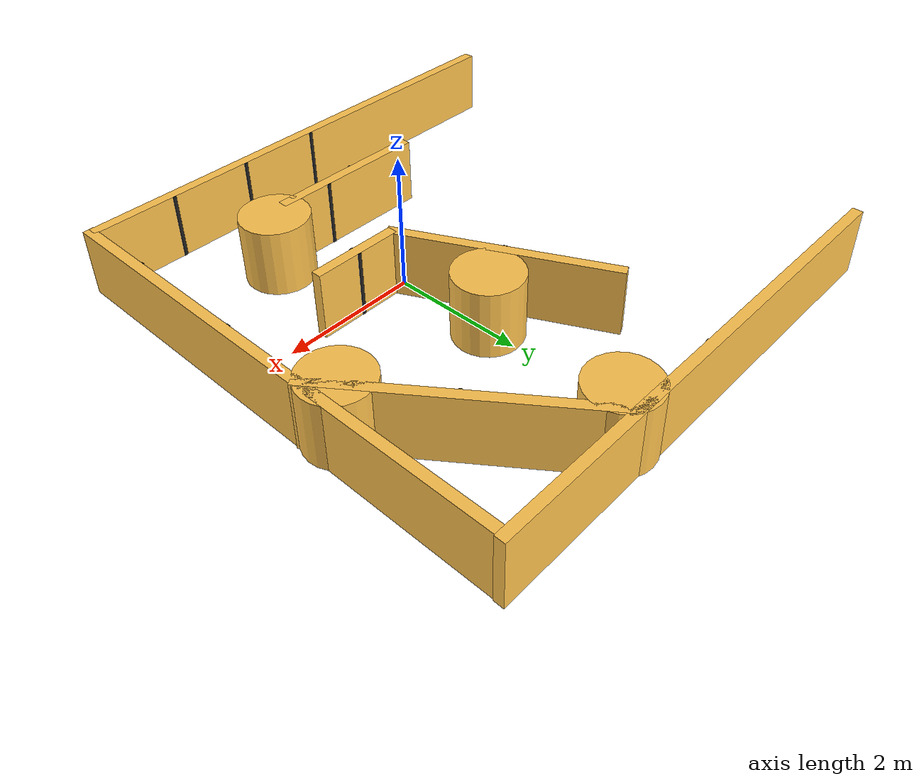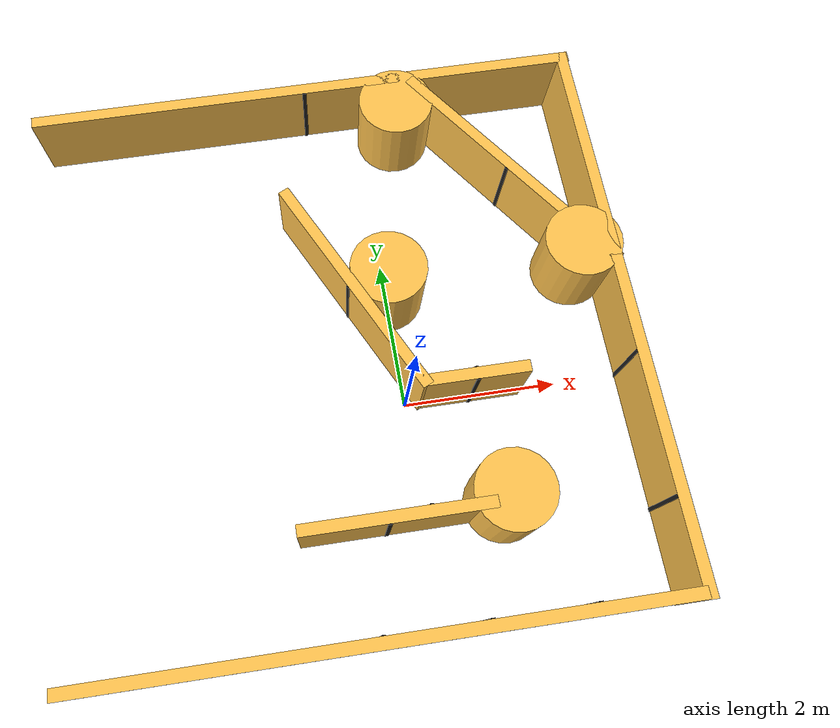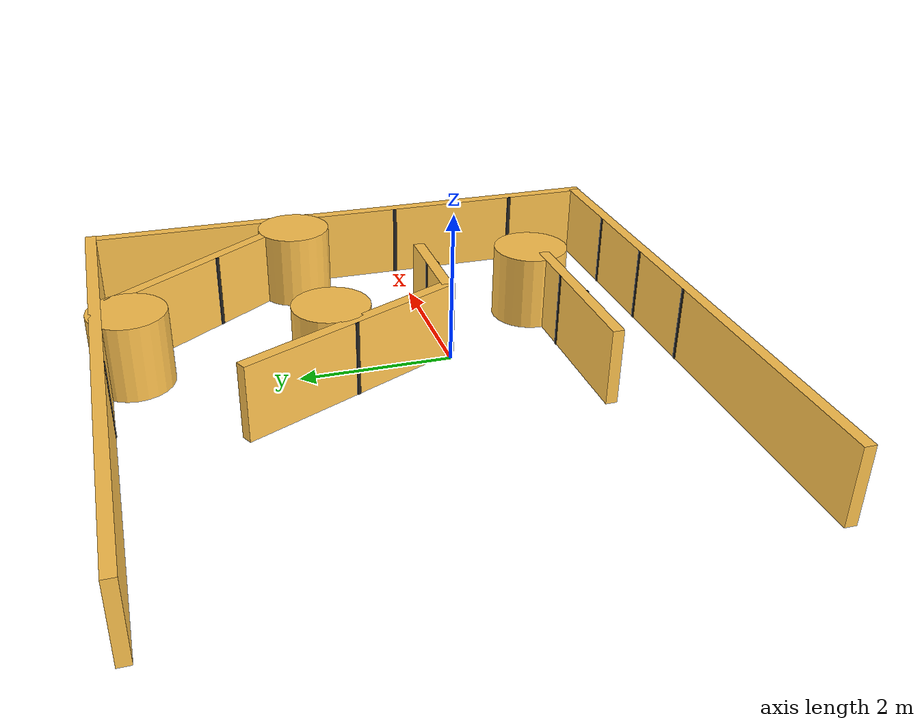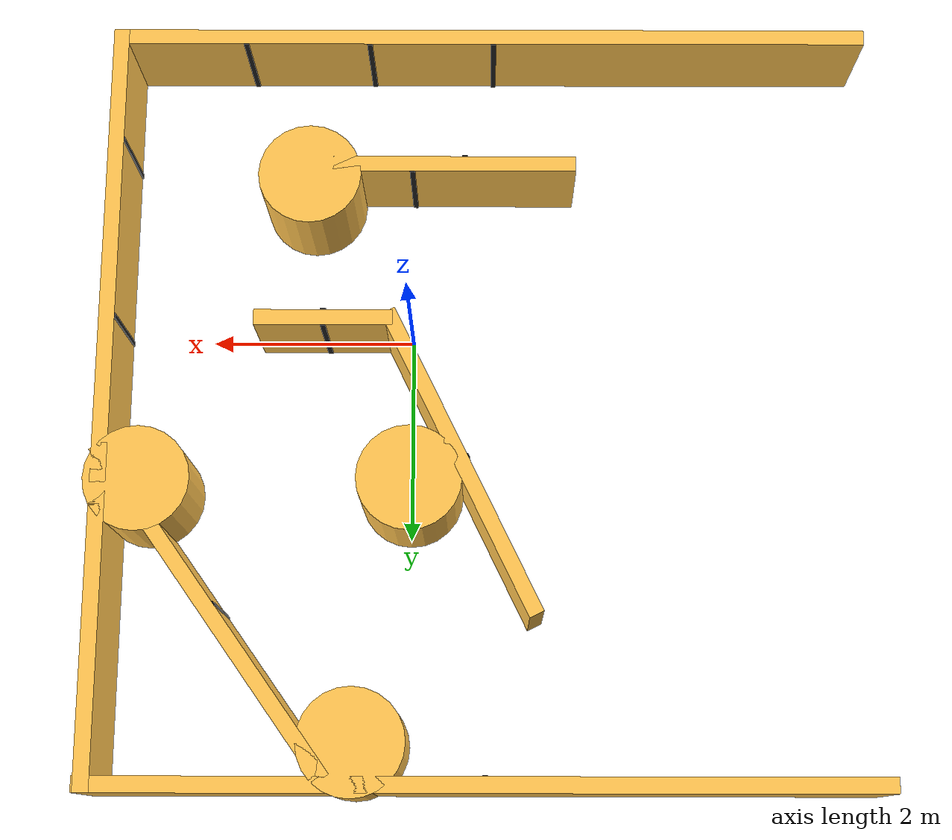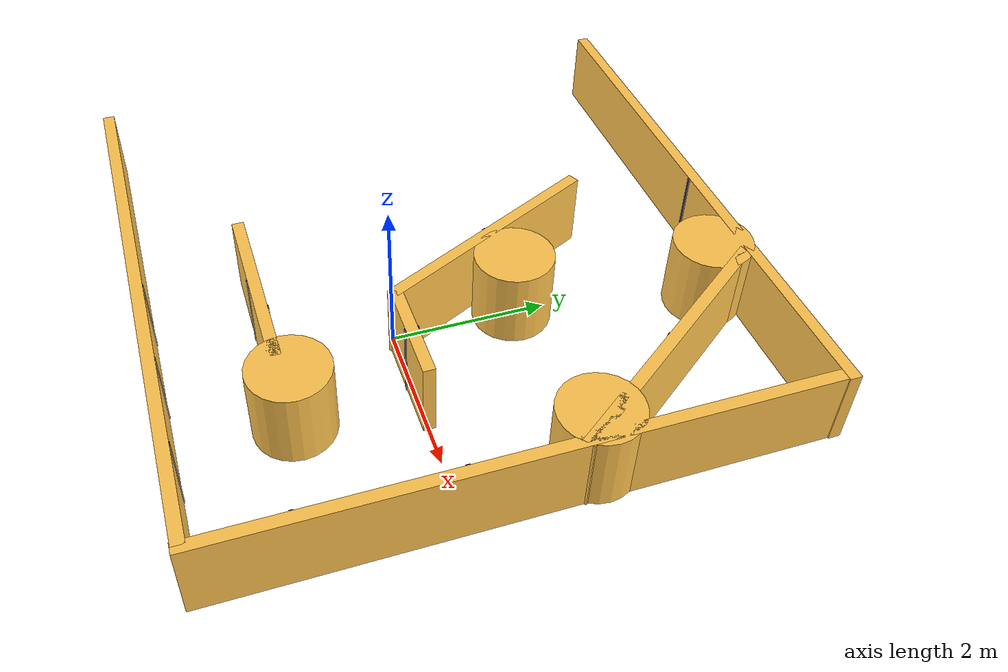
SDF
<sdf version="1.5">
 <model name="Maze_ql_1">
  <link name="Wall_14">
   <pose>-0.409926 -1.55115 0 0 -0 3.14159</pose>
   <visual name="Wall_14_Visual">
    <pose>0 0 0.5 0 -0 0</pose>
    <geometry><box><size>2.36648 0.15 1</size></box></geometry>
    <material>
     <script><uri>file://media/materials/scripts/gazebo.material</uri><name>Gazebo/Grey</name></script>
     <ambient>1 0.764706 0.305882 1</ambient>
     <diffuse>0.7 0.7 0.7 1</diffuse>
     <specular>0.01 0.01 0.01 1</specular>
     <emissive>0 0 0 1</emissive>
     <shader type="pixel"/>
    </material>
   </visual>
   <collision name="Wall_14_Collision">
    <pose>0 0 0.5 0 -0 0</pose>
    <geometry><box><size>2.36648 0.15 1</size></box></geometry>
    <surface>
     <friction><ode><mu>1</mu><mu2>1</mu2><fdir1>0 0 0</fdir1><slip1>0</slip1><slip2>0</slip2></ode></friction>
     <bounce><restitution_coefficient>0</restitution_coefficient><threshold>1e+06</threshold></bounce>
     <contact>
      <collide_without_contact>0</collide_without_contact>
      <collide_without_contact_bitmask>1</collide_without_contact_bitmask>
      <collide_bitmask>1</collide_bitmask>
      <ode>
       <soft_cfm>0</soft_cfm>
       <soft_erp>0.2</soft_erp>
       <kp>1e+13</kp>
       <kd>1</kd>
       <max_vel>0.01</max_vel>
       <min_depth>0</min_depth>
      </ode>
      <bullet>
       <split_impulse>1</split_impulse>
       <split_impulse_penetration_threshold>-0.01</split_impulse_penetration_threshold>
       <soft_cfm>0</soft_cfm>
       <soft_erp>0.2</soft_erp>
       <kp>1e+13</kp>
       <kd>1</kd>
      </bullet>
     </contact>
    </surface>
   </collision>
  </link>
  <link name="Wall_19">
   <pose>0.837565 0.010614 0 0 -0 3.14159</pose>
   <visual name="Wall_19_Visual">
    <pose>0 0 0.5 0 -0 0</pose>
    <geometry><box><size>1.32777 0.15 1</size></box></geometry>
    <material>
     <script><uri>file://media/materials/scripts/gazebo.material</uri><name>Gazebo/Grey</name></script>
     <ambient>1 0.764706 0.305882 1</ambient>
     <diffuse>0.7 0.7 0.7 1</diffuse>
     <specular>0.01 0.01 0.01 1</specular>
     <emissive>0 0 0 1</emissive>
     <shader type="pixel"/>
    </material>
   </visual>
   <collision name="Wall_19_Collision">
    <pose>0 0 0.5 0 -0 0</pose>
    <geometry><box><size>1.32777 0.15 1</size></box></geometry>
    <surface>
     <friction><ode><mu>1</mu><mu2>1</mu2><fdir1>0 0 0</fdir1><slip1>0</slip1><slip2>0</slip2></ode></friction>
     <bounce><restitution_coefficient>0</restitution_coefficient><threshold>1e+06</threshold></bounce>
     <contact>
      <collide_without_contact>0</collide_without_contact>
      <collide_without_contact_bitmask>1</collide_without_contact_bitmask>
      <collide_bitmask>1</collide_bitmask>
      <ode>
       <soft_cfm>0</soft_cfm>
       <soft_erp>0.2</soft_erp>
       <kp>1e+13</kp>
       <kd>1</kd>
       <max_vel>0.01</max_vel>
       <min_depth>0</min_depth>
      </ode>
      <bullet>
       <split_impulse>1</split_impulse>
       <split_impulse_penetration_threshold>-0.01</split_impulse_penetration_threshold>
       <soft_cfm>0</soft_cfm>
       <soft_erp>0.2</soft_erp>
       <kp>1e+13</kp>
       <kd>1</kd>
      </bullet>
     </contact>
    </surface>
   </collision>
  </link>
  <link name="Wall_20">
   <pose>-0.484506 1.39698 0 0 -0 2.02352</pose>
   <visual name="Wall_20_Visual">
    <pose>0 0 0.5 0 -0 0</pose>
    <geometry><box><size>3.22686 0.15 1</size></box></geometry>
    <material>
     <script><uri>file://media/materials/scripts/gazebo.material</uri><name>Gazebo/Grey</name></script>
     <ambient>1 0.764706 0.305882 1</ambient>
     <diffuse>0.7 0.7 0.7 1</diffuse>
     <specular>0.01 0.01 0.01 1</specular>
     <emissive>0 0 0 1</emissive>
     <shader type="pixel"/>
    </material>
   </visual>
   <collision name="Wall_20_Collision">
    <pose>0 0 0.5 0 -0 0</pose>
    <geometry><box><size>3.22686 0.15 1</size></box></geometry>
    <surface>
     <friction><ode><mu>1</mu><mu2>1</mu2><fdir1>0 0 0</fdir1><slip1>0</slip1><slip2>0</slip2></ode></friction>
     <bounce><restitution_coefficient>0</restitution_coefficient><threshold>1e+06</threshold></bounce>
     <contact>
      <collide_without_contact>0</collide_without_contact>
      <collide_without_contact_bitmask>1</collide_without_contact_bitmask>
      <collide_bitmask>1</collide_bitmask>
      <ode>
       <soft_cfm>0</soft_cfm>
       <soft_erp>0.2</soft_erp>
       <kp>1e+13</kp>
       <kd>1</kd>
       <max_vel>0.01</max_vel>
       <min_depth>0</min_depth>
      </ode>
      <bullet>
       <split_impulse>1</split_impulse>
       <split_impulse_penetration_threshold>-0.01</split_impulse_penetration_threshold>
       <soft_cfm>0</soft_cfm>
       <soft_erp>0.2</soft_erp>
       <kp>1e+13</kp>
       <kd>1</kd>
      </bullet>
     </contact>
    </surface>
   </collision>
  </link>
  <link name="Wall_24">
   <pose>1.8412 2.79579 0 0 0 -0.948986</pose>
   <visual name="Wall_24_Visual">
    <pose>0 0 0.5 0 -0 0</pose>
    <geometry><box><size>3.76645 0.15 1</size></box></geometry>
    <material>
     <script><uri>file://media/materials/scripts/gazebo.material</uri><name>Gazebo/Grey</name></script>
     <ambient>1 0.764706 0.305882 1</ambient>
     <diffuse>0.7 0.7 0.7 1</diffuse>
     <specular>0.01 0.01 0.01 1</specular>
     <emissive>0 0 0 1</emissive>
     <shader type="pixel"/>
    </material>
   </visual>
   <collision name="Wall_24_Collision">
    <pose>0 0 0.5 0 -0 0</pose>
    <geometry><box><size>3.76645 0.15 1</size></box></geometry>
    <surface>
     <friction><ode><mu>1</mu><mu2>1</mu2><fdir1>0 0 0</fdir1><slip1>0</slip1><slip2>0</slip2></ode></friction>
     <bounce><restitution_coefficient>0</restitution_coefficient><threshold>1e+06</threshold></bounce>
     <contact>
      <collide_without_contact>0</collide_without_contact>
      <collide_without_contact_bitmask>1</collide_without_contact_bitmask>
      <collide_bitmask>1</collide_bitmask>
      <ode>
       <soft_cfm>0</soft_cfm>
       <soft_erp>0.2</soft_erp>
       <kp>1e+13</kp>
       <kd>1</kd>
       <max_vel>0.01</max_vel>
       <min_depth>0</min_depth>
      </ode>
      <bullet>
       <split_impulse>1</split_impulse>
       <split_impulse_penetration_threshold>-0.01</split_impulse_penetration_threshold>
       <soft_cfm>0</soft_cfm>
       <soft_erp>0.2</soft_erp>
       <kp>1e+13</kp>
       <kd>1</kd>
      </bullet>
     </contact>
    </surface>
   </collision>
  </link>
  <link name="Wall_6">
   <pose>-0.787021 -2.89307 0 0 -0 0</pose>
   <visual name="Wall_6_Visual">
    <pose>0 0 0.5 0 -0 0</pose>
    <geometry><box><size>7.34986 0.15 1</size></box></geometry>
    <material>
     <script><uri>file://media/materials/scripts/gazebo.material</uri><name>Gazebo/Grey</name></script>
     <ambient>1 0.764706 0.305882 1</ambient>
     <diffuse>0.7 0.7 0.7 1</diffuse>
     <specular>0.01 0.01 0.01 1</specular>
     <emissive>0 0 0 1</emissive>
     <shader type="pixel"/>
    </material>
   </visual>
   <collision name="Wall_6_Collision">
    <pose>0 0 0.5 0 -0 0</pose>
    <geometry><box><size>7.34986 0.15 1</size></box></geometry>
    <surface>
     <friction><ode><mu>1</mu><mu2>1</mu2><fdir1>0 0 0</fdir1><slip1>0</slip1><slip2>0</slip2></ode></friction>
     <bounce><restitution_coefficient>0</restitution_coefficient><threshold>1e+06</threshold></bounce>
     <contact>
      <collide_without_contact>0</collide_without_contact>
      <collide_without_contact_bitmask>1</collide_without_contact_bitmask>
      <collide_bitmask>1</collide_bitmask>
      <ode>
       <soft_cfm>0</soft_cfm>
       <soft_erp>0.2</soft_erp>
       <kp>1e+13</kp>
       <kd>1</kd>
       <max_vel>0.01</max_vel>
       <min_depth>0</min_depth>
      </ode>
      <bullet>
       <split_impulse>1</split_impulse>
       <split_impulse_penetration_threshold>-0.01</split_impulse_penetration_threshold>
       <soft_cfm>0</soft_cfm>
       <soft_erp>0.2</soft_erp>
       <kp>1e+13</kp>
       <kd>1</kd>
      </bullet>
     </contact>
    </surface>
   </collision>
  </link>
  <link name="Wall_6_clone">
   <pose>-0.718431 4.37517 0 0 -0 0</pose>
   <visual name="ModelPreview_2::Wall_6_clone::Wall_6_Visual">
    <pose>0 0 0.5 0 -0 0</pose>
    <geometry><box><size>7.41907 0.15 1</size></box></geometry>
    <material>
     <script><uri>file://media/materials/scripts/gazebo.material</uri><name>Gazebo/Grey</name></script>
     <ambient>1 0.764706 0.305882 1</ambient>
     <diffuse>0.7 0.7 0.7 1</diffuse>
     <specular>0.01 0.01 0.01 1</specular>
     <emissive>0 0 0 1</emissive>
     <shader type="pixel"/>
    </material>
   </visual>
   <collision name="Wall_6_Collision">
    <pose>0 0 0.5 0 -0 0</pose>
    <geometry><box><size>7.41907 0.15 1</size></box></geometry>
    <surface>
     <friction><ode><mu>1</mu><mu2>1</mu2><fdir1>0 0 0</fdir1><slip1>0</slip1><slip2>0</slip2></ode></friction>
     <bounce><restitution_coefficient>0</restitution_coefficient><threshold>1e+06</threshold></bounce>
     <contact>
      <collide_without_contact>0</collide_without_contact>
      <collide_without_contact_bitmask>1</collide_without_contact_bitmask>
      <collide_bitmask>1</collide_bitmask>
      <ode>
       <soft_cfm>0</soft_cfm>
       <soft_erp>0.2</soft_erp>
       <kp>1e+13</kp>
       <kd>1</kd>
       <max_vel>0.01</max_vel>
       <min_depth>0</min_depth>
      </ode>
      <bullet>
       <split_impulse>1</split_impulse>
       <split_impulse_penetration_threshold>-0.01</split_impulse_penetration_threshold>
       <soft_cfm>0</soft_cfm>
       <soft_erp>0.2</soft_erp>
       <kp>1e+13</kp>
       <kd>1</kd>
      </bullet>
     </contact>
    </surface>
   </collision>
  </link>
  <link name="Wall_7">
   <pose>2.90228 0.736783 0 0 -0 1.5708</pose>
   <visual name="Wall_7_Visual">
    <pose>0 0 0.5 0 -0 0</pose>
    <geometry><box><size>7.42238 0.15 1</size></box></geometry>
    <material>
     <script><uri>file://media/materials/scripts/gazebo.material</uri><name>Gazebo/Grey</name></script>
     <ambient>1 0.764706 0.305882 1</ambient>
     <diffuse>0.7 0.7 0.7 1</diffuse>
     <specular>0.01 0.01 0.01 1</specular>
     <emissive>0 0 0 1</emissive>
     <shader type="pixel"/>
    </material>
   </visual>
   <collision name="Wall_7_Collision">
    <pose>0 0 0.5 0 -0 0</pose>
    <geometry><box><size>7.42238 0.15 1</size></box></geometry>
    <surface>
     <friction><ode><mu>1</mu><mu2>1</mu2><fdir1>0 0 0</fdir1><slip1>0</slip1><slip2>0</slip2></ode></friction>
     <bounce><restitution_coefficient>0</restitution_coefficient><threshold>1e+06</threshold></bounce>
     <contact>
      <collide_without_contact>0</collide_without_contact>
      <collide_without_contact_bitmask>1</collide_without_contact_bitmask>
      <collide_bitmask>1</collide_bitmask>
      <ode>
       <soft_cfm>0</soft_cfm>
       <soft_erp>0.2</soft_erp>
       <kp>1e+13</kp>
       <kd>1</kd>
       <max_vel>0.01</max_vel>
       <min_depth>0</min_depth>
      </ode>
      <bullet>
       <split_impulse>1</split_impulse>
       <split_impulse_penetration_threshold>-0.01</split_impulse_penetration_threshold>
       <soft_cfm>0</soft_cfm>
       <soft_erp>0.2</soft_erp>
       <kp>1e+13</kp>
       <kd>1</kd>
      </bullet>
     </contact>
    </surface>
   </collision>
  </link>
  <link name="link_1">
   <pose>1 -1.44562 0.5 0 -0 0</pose>
   <visual name="visual">
    <geometry><cylinder><radius>0.5</radius><length>1</length></cylinder></geometry>
    <material>
     <script><uri>file://media/materials/scripts/gazebo.material</uri><name>Gazebo/Grey</name></script>
     <ambient>1 0.764706 0.305882 1</ambient>
     <diffuse>0.7 0.7 0.7 1</diffuse>
     <specular>0.01 0.01 0.01 1</specular>
     <emissive>0 0 0 1</emissive>
     <shader type="pixel"/>
    </material>
   </visual>
   <collision name="collision">
    <geometry><cylinder><radius>0.5</radius><length>1</length></cylinder></geometry>
    <surface>
     <friction><ode><mu>1</mu><mu2>1</mu2><fdir1>0 0 0</fdir1><slip1>0</slip1><slip2>0</slip2></ode></friction>
     <bounce><restitution_coefficient>0</restitution_coefficient><threshold>1e+06</threshold></bounce>
     <contact>
      <collide_without_contact>0</collide_without_contact>
      <collide_without_contact_bitmask>1</collide_without_contact_bitmask>
      <collide_bitmask>1</collide_bitmask>
      <ode>
       <soft_cfm>0</soft_cfm>
       <soft_erp>0.2</soft_erp>
       <kp>1e+13</kp>
       <kd>1</kd>
       <max_vel>0.01</max_vel>
       <min_depth>0</min_depth>
      </ode>
      <bullet>
       <split_impulse>1</split_impulse>
       <split_impulse_penetration_threshold>-0.01</split_impulse_penetration_threshold>
       <soft_cfm>0</soft_cfm>
       <soft_erp>0.2</soft_erp>
       <kp>1e+13</kp>
       <kd>1</kd>
      </bullet>
     </contact>
    </surface>
   </collision>
  </link>
  <link name="link_2">
   <pose>0.498835 4 0.5 0 -0 0</pose>
   <visual name="visual">
    <geometry><cylinder><radius>0.5</radius><length>1</length></cylinder></geometry>
    <material>
     <script><uri>file://media/materials/scripts/gazebo.material</uri><name>Gazebo/Grey</name></script>
     <ambient>1 0.764706 0.305882 1</ambient>
     <diffuse>0.7 0.7 0.7 1</diffuse>
     <specular>0.01 0.01 0.01 1</specular>
     <emissive>0 0 0 1</emissive>
     <shader type="pixel"/>
    </material>
   </visual>
   <collision name="collision">
    <geometry><cylinder><radius>0.5</radius><length>1</length></cylinder></geometry>
    <surface>
     <friction><ode><mu>1</mu><mu2>1</mu2><fdir1>0 0 0</fdir1><slip1>0</slip1><slip2>0</slip2></ode></friction>
     <bounce><restitution_coefficient>0</restitution_coefficient><threshold>1e+06</threshold></bounce>
     <contact>
      <collide_without_contact>0</collide_without_contact>
      <collide_without_contact_bitmask>1</collide_without_contact_bitmask>
      <collide_bitmask>1</collide_bitmask>
      <ode>
       <soft_cfm>0</soft_cfm>
       <soft_erp>0.2</soft_erp>
       <kp>1e+13</kp>
       <kd>1</kd>
       <max_vel>0.01</max_vel>
       <min_depth>0</min_depth>
      </ode>
      <bullet>
       <split_impulse>1</split_impulse>
       <split_impulse_penetration_threshold>-0.01</split_impulse_penetration_threshold>
       <soft_cfm>0</soft_cfm>
       <soft_erp>0.2</soft_erp>
       <kp>1e+13</kp>
       <kd>1</kd>
      </bullet>
     </contact>
    </surface>
   </collision>
  </link>
  <link name="link_3">
   <pose>0 1.56543 0.5 0 -0 0</pose>
   <visual name="visual">
    <geometry><cylinder><radius>0.5</radius><length>1</length></cylinder></geometry>
    <material>
     <script><uri>file://media/materials/scripts/gazebo.material</uri><name>Gazebo/Grey</name></script>
     <ambient>1 0.764706 0.305882 1</ambient>
     <diffuse>0.7 0.7 0.7 1</diffuse>
     <specular>0.01 0.01 0.01 1</specular>
     <emissive>0 0 0 1</emissive>
     <shader type="pixel"/>
    </material>
   </visual>
   <collision name="collision">
    <geometry><cylinder><radius>0.5</radius><length>1</length></cylinder></geometry>
    <surface>
     <friction><ode><mu>1</mu><mu2>1</mu2><fdir1>0 0 0</fdir1><slip1>0</slip1><slip2>0</slip2></ode></friction>
     <bounce><restitution_coefficient>0</restitution_coefficient><threshold>1e+06</threshold></bounce>
     <contact>
      <collide_without_contact>0</collide_without_contact>
      <collide_without_contact_bitmask>1</collide_without_contact_bitmask>
      <collide_bitmask>1</collide_bitmask>
      <ode>
       <soft_cfm>0</soft_cfm>
       <soft_erp>0.2</soft_erp>
       <kp>1e+13</kp>
       <kd>1</kd>
       <max_vel>0.01</max_vel>
       <min_depth>0</min_depth>
      </ode>
      <bullet>
       <split_impulse>1</split_impulse>
       <split_impulse_penetration_threshold>-0.01</split_impulse_penetration_threshold>
       <soft_cfm>0</soft_cfm>
       <soft_erp>0.2</soft_erp>
       <kp>1e+13</kp>
       <kd>1</kd>
      </bullet>
     </contact>
    </surface>
   </collision>
  </link>
  <link name="link_4">
   <pose>2.54621 1.57728 0.5 0 -0 0</pose>
   <visual name="visual">
    <geometry><cylinder><radius>0.5</radius><length>1</length></cylinder></geometry>
    <material>
     <script><uri>file://media/materials/scripts/gazebo.material</uri><name>Gazebo/Grey</name></script>
     <ambient>1 0.764706 0.305882 1</ambient>
     <diffuse>0.7 0.7 0.7 1</diffuse>
     <specular>0.01 0.01 0.01 1</specular>
     <emissive>0 0 0 1</emissive>
     <shader type="pixel"/>
    </material>
   </visual>
   <collision name="collision">
    <geometry><cylinder><radius>0.5</radius><length>1</length></cylinder></geometry>
    <surface>
     <friction><ode><mu>1</mu><mu2>1</mu2><fdir1>0 0 0</fdir1><slip1>0</slip1><slip2>0</slip2></ode></friction>
     <bounce><restitution_coefficient>0</restitution_coefficient><threshold>1e+06</threshold></bounce>
     <contact>
      <collide_without_contact>0</collide_without_contact>
      <collide_without_contact_bitmask>1</collide_without_contact_bitmask>
      <collide_bitmask>1</collide_bitmask>
      <ode>
       <soft_cfm>0</soft_cfm>
       <soft_erp>0.2</soft_erp>
       <kp>1e+13</kp>
       <kd>1</kd>
       <max_vel>0.01</max_vel>
       <min_depth>0</min_depth>
      </ode>
      <bullet>
       <split_impulse>1</split_impulse>
       <split_impulse_penetration_threshold>-0.01</split_impulse_penetration_threshold>
       <soft_cfm>0</soft_cfm>
       <soft_erp>0.2</soft_erp>
       <kp>1e+13</kp>
       <kd>1</kd>
      </bullet>
     </contact>
    </surface>
   </collision>
  </link>
  <link name="Beacon_6">
   <pose>-0.787021 -2.81307 0 0 0 -1.5708</pose>
   <visual name="ModelPreview_2::Beacon_6::Beacon_6_Visual">
    <pose>0 0 0.5 0 -0 0</pose>
    <geometry><box><size>0.01 0.05 1</size></box></geometry>
    <material>
     <script><uri>file://media/materials/scripts/gazebo.material</uri><name>Gazebo/Black</name></script>
     <ambient>0 0 0 1</ambient>
     <diffuse>0 0 0 1</diffuse>
     <specular>0.01 0.01 0.01 1</specular>
     <emissive>0 0 0 1</emissive>
     <shader type="pixel"/>
    </material>
   </visual>
   <collision name="Beacon_6_Collision">
    <laser_retro>6</laser_retro>
    <pose>0 0 0.5 0 -0 0</pose>
    <geometry><box><size>0.01 0.05 1</size></box></geometry>
    <surface>
     <friction><ode><mu>1</mu><mu2>1</mu2><fdir1>0 0 0</fdir1><slip1>0</slip1><slip2>0</slip2></ode></friction>
     <bounce><restitution_coefficient>0</restitution_coefficient><threshold>1e+06</threshold></bounce>
     <contact>
      <collide_without_contact>0</collide_without_contact>
      <collide_without_contact_bitmask>1</collide_without_contact_bitmask>
      <collide_bitmask>1</collide_bitmask>
      <ode>
       <soft_cfm>0</soft_cfm>
       <soft_erp>0.2</soft_erp>
       <kp>1e+13</kp>
       <kd>1</kd>
       <max_vel>0.01</max_vel>
       <min_depth>0</min_depth>
      </ode>
      <bullet>
       <split_impulse>1</split_impulse>
       <split_impulse_penetration_threshold>-0.01</split_impulse_penetration_threshold>
       <soft_cfm>0</soft_cfm>
       <soft_erp>0.2</soft_erp>
       <kp>1e+13</kp>
       <kd>1</kd>
      </bullet>
     </contact>
    </surface>
   </collision>
  </link>
  <link name="Beacon_7">
   <pose>0.437955 -2.81307 0 0 0 -1.5708</pose>
   <visual name="ModelPreview_2::Beacon_7::Beacon_7_Visual">
    <pose>0 0 0.5 0 -0 0</pose>
    <geometry><box><size>0.01 0.05 1</size></box></geometry>
    <material>
     <script><uri>file://media/materials/scripts/gazebo.material</uri><name>Gazebo/Black</name></script>
     <ambient>0 0 0 1</ambient>
     <diffuse>0 0 0 1</diffuse>
     <specular>0.01 0.01 0.01 1</specular>
     <emissive>0 0 0 1</emissive>
     <shader type="pixel"/>
    </material>
   </visual>
   <collision name="Beacon_7_Collision">
    <laser_retro>7</laser_retro>
    <pose>0 0 0.5 0 -0 0</pose>
    <geometry><box><size>0.01 0.05 1</size></box></geometry>
    <surface>
     <friction><ode><mu>1</mu><mu2>1</mu2><fdir1>0 0 0</fdir1><slip1>0</slip1><slip2>0</slip2></ode></friction>
     <bounce><restitution_coefficient>0</restitution_coefficient><threshold>1e+06</threshold></bounce>
     <contact>
      <collide_without_contact>0</collide_without_contact>
      <collide_without_contact_bitmask>1</collide_without_contact_bitmask>
      <collide_bitmask>1</collide_bitmask>
      <ode>
       <soft_cfm>0</soft_cfm>
       <soft_erp>0.2</soft_erp>
       <kp>1e+13</kp>
       <kd>1</kd>
       <max_vel>0.01</max_vel>
       <min_depth>0</min_depth>
      </ode>
      <bullet>
       <split_impulse>1</split_impulse>
       <split_impulse_penetration_threshold>-0.01</split_impulse_penetration_threshold>
       <soft_cfm>0</soft_cfm>
       <soft_erp>0.2</soft_erp>
       <kp>1e+13</kp>
       <kd>1</kd>
      </bullet>
     </contact>
    </surface>
   </collision>
  </link>
  <link name="Beacon_8">
   <pose>1.662932 -2.81307 0 0 0 -1.5708</pose>
   <visual name="ModelPreview_2::Beacon_8::Beacon_8_Visual">
    <pose>0 0 0.5 0 -0 0</pose>
    <geometry><box><size>0.01 0.05 1</size></box></geometry>
    <material>
     <script><uri>file://media/materials/scripts/gazebo.material</uri><name>Gazebo/Black</name></script>
     <ambient>0 0 0 1</ambient>
     <diffuse>0 0 0 1</diffuse>
     <specular>0.01 0.01 0.01 1</specular>
     <emissive>0 0 0 1</emissive>
     <shader type="pixel"/>
    </material>
   </visual>
   <collision name="Beacon_8_Collision">
    <laser_retro>8</laser_retro>
    <pose>0 0 0.5 0 -0 0</pose>
    <geometry><box><size>0.01 0.05 1</size></box></geometry>
    <surface>
     <friction><ode><mu>1</mu><mu2>1</mu2><fdir1>0 0 0</fdir1><slip1>0</slip1><slip2>0</slip2></ode></friction>
     <bounce><restitution_coefficient>0</restitution_coefficient><threshold>1e+06</threshold></bounce>
     <contact>
      <collide_without_contact>0</collide_without_contact>
      <collide_without_contact_bitmask>1</collide_without_contact_bitmask>
      <collide_bitmask>1</collide_bitmask>
      <ode>
       <soft_cfm>0</soft_cfm>
       <soft_erp>0.2</soft_erp>
       <kp>1e+13</kp>
       <kd>1</kd>
       <max_vel>0.01</max_vel>
       <min_depth>0</min_depth>
      </ode>
      <bullet>
       <split_impulse>1</split_impulse>
       <split_impulse_penetration_threshold>-0.01</split_impulse_penetration_threshold>
       <soft_cfm>0</soft_cfm>
       <soft_erp>0.2</soft_erp>
       <kp>1e+13</kp>
       <kd>1</kd>
      </bullet>
     </contact>
    </surface>
   </collision>
  </link>
  <link name="Beacon_11">
   <pose>2.82228 0 0 0 0 -1.5708</pose>
   <visual name="ModelPreview_2::Beacon_11::Beacon_11_Visual">
    <pose>0 0 0.5 0 -0 0</pose>
    <geometry><box><size>0.05 0.01 1</size></box></geometry>
    <material>
     <script><uri>file://media/materials/scripts/gazebo.material</uri><name>Gazebo/Black</name></script>
     <ambient>0 0 0 1</ambient>
     <diffuse>0 0 0 1</diffuse>
     <specular>0.01 0.01 0.01 1</specular>
     <emissive>0 0 0 1</emissive>
     <shader type="pixel"/>
    </material>
   </visual>
   <collision name="Beacon_11_Collision">
    <laser_retro>11</laser_retro>
    <pose>0 0 0.5 0 -0 0</pose>
    <geometry><box><size>0.05 0.01 1</size></box></geometry>
    <surface>
     <friction><ode><mu>1</mu><mu2>1</mu2><fdir1>0 0 0</fdir1><slip1>0</slip1><slip2>0</slip2></ode></friction>
     <bounce><restitution_coefficient>0</restitution_coefficient><threshold>1e+06</threshold></bounce>
     <contact>
      <collide_without_contact>0</collide_without_contact>
      <collide_without_contact_bitmask>1</collide_without_contact_bitmask>
      <collide_bitmask>1</collide_bitmask>
      <ode>
       <soft_cfm>0</soft_cfm>
       <soft_erp>0.2</soft_erp>
       <kp>1e+13</kp>
       <kd>1</kd>
       <max_vel>0.01</max_vel>
       <min_depth>0</min_depth>
      </ode>
      <bullet>
       <split_impulse>1</split_impulse>
       <split_impulse_penetration_threshold>-0.01</split_impulse_penetration_threshold>
       <soft_cfm>0</soft_cfm>
       <soft_erp>0.2</soft_erp>
       <kp>1e+13</kp>
       <kd>1</kd>
      </bullet>
     </contact>
    </surface>
   </collision>
  </link>
  <link name="Beacon_12">
   <pose>2.82228 -1.8 0 0 0 -1.5708</pose>
   <visual name="ModelPreview_2::Beacon_12::Beacon_12_Visual">
    <pose>0 0 0.5 0 -0 0</pose>
    <geometry><box><size>0.05 0.01 1</size></box></geometry>
    <material>
     <script><uri>file://media/materials/scripts/gazebo.material</uri><name>Gazebo/Black</name></script>
     <ambient>0 0 0 1</ambient>
     <diffuse>0 0 0 1</diffuse>
     <specular>0.01 0.01 0.01 1</specular>
     <emissive>0 0 0 1</emissive>
     <shader type="pixel"/>
    </material>
   </visual>
   <collision name="Beacon_12_Collision">
    <laser_retro>12</laser_retro>
    <pose>0 0 0.5 0 -0 0</pose>
    <geometry><box><size>0.05 0.01 1</size></box></geometry>
    <surface>
     <friction><ode><mu>1</mu><mu2>1</mu2><fdir1>0 0 0</fdir1><slip1>0</slip1><slip2>0</slip2></ode></friction>
     <bounce><restitution_coefficient>0</restitution_coefficient><threshold>1e+06</threshold></bounce>
     <contact>
      <collide_without_contact>0</collide_without_contact>
      <collide_without_contact_bitmask>1</collide_without_contact_bitmask>
      <collide_bitmask>1</collide_bitmask>
      <ode>
       <soft_cfm>0</soft_cfm>
       <soft_erp>0.2</soft_erp>
       <kp>1e+13</kp>
       <kd>1</kd>
       <max_vel>0.01</max_vel>
       <min_depth>0</min_depth>
      </ode>
      <bullet>
       <split_impulse>1</split_impulse>
       <split_impulse_penetration_threshold>-0.01</split_impulse_penetration_threshold>
       <soft_cfm>0</soft_cfm>
       <soft_erp>0.2</soft_erp>
       <kp>1e+13</kp>
       <kd>1</kd>
      </bullet>
     </contact>
    </surface>
   </collision>
  </link>
  <link name="Beacon_13">
   <pose>-0.718431 4.29517 0 0 0 -1.5708</pose>
   <visual name="ModelPreview_2::Beacon_13::Beacon_13_Visual">
    <pose>0 0 0.5 0 -0 0</pose>
    <geometry><box><size>0.01 0.05 1</size></box></geometry>
    <material>
     <script><uri>file://media/materials/scripts/gazebo.material</uri><name>Gazebo/Black</name></script>
     <ambient>0 0 0 1</ambient>
     <diffuse>0 0 0 1</diffuse>
     <specular>0.01 0.01 0.01 1</specular>
     <emissive>0 0 0 1</emissive>
     <shader type="pixel"/>
    </material>
   </visual>
   <collision name="Beacon_13_Collision">
    <laser_retro>13</laser_retro>
    <pose>0 0 0.5 0 -0 0</pose>
    <geometry><box><size>0.01 0.05 1</size></box></geometry>
    <surface>
     <friction><ode><mu>1</mu><mu2>1</mu2><fdir1>0 0 0</fdir1><slip1>0</slip1><slip2>0</slip2></ode></friction>
     <bounce><restitution_coefficient>0</restitution_coefficient><threshold>1e+06</threshold></bounce>
     <contact>
      <collide_without_contact>0</collide_without_contact>
      <collide_without_contact_bitmask>1</collide_without_contact_bitmask>
      <collide_bitmask>1</collide_bitmask>
      <ode>
       <soft_cfm>0</soft_cfm>
       <soft_erp>0.2</soft_erp>
       <kp>1e+13</kp>
       <kd>1</kd>
       <max_vel>0.01</max_vel>
       <min_depth>0</min_depth>
      </ode>
      <bullet>
       <split_impulse>1</split_impulse>
       <split_impulse_penetration_threshold>-0.01</split_impulse_penetration_threshold>
       <soft_cfm>0</soft_cfm>
       <soft_erp>0.2</soft_erp>
       <kp>1e+13</kp>
       <kd>1</kd>
      </bullet>
     </contact>
    </surface>
   </collision>
  </link>
  <link name="Beacon_23">
   <pose>0.837565 0.090614 0 0 0 -1.5708</pose>
   <visual name="ModelPreview_2::Beacon_23::Beacon_23_Visual">
    <pose>0 0 0.5 0 -0 0</pose>
    <geometry><box><size>0.01 0.05 1</size></box></geometry>
    <material>
     <script><uri>file://media/materials/scripts/gazebo.material</uri><name>Gazebo/Black</name></script>
     <ambient>0 0 0 1</ambient>
     <diffuse>0 0 0 1</diffuse>
     <specular>0.01 0.01 0.01 1</specular>
     <emissive>0 0 0 1</emissive>
     <shader type="pixel"/>
    </material>
   </visual>
   <collision name="Beacon_23_Collision">
    <laser_retro>23</laser_retro>
    <pose>0 0 0.5 0 -0 0</pose>
    <geometry><box><size>0.01 0.05 1</size></box></geometry>
    <surface>
     <friction><ode><mu>1</mu><mu2>1</mu2><fdir1>0 0 0</fdir1><slip1>0</slip1><slip2>0</slip2></ode></friction>
     <bounce><restitution_coefficient>0</restitution_coefficient><threshold>1e+06</threshold></bounce>
     <contact>
      <collide_without_contact>0</collide_without_contact>
      <collide_without_contact_bitmask>1</collide_without_contact_bitmask>
      <collide_bitmask>1</collide_bitmask>
      <ode>
       <soft_cfm>0</soft_cfm>
       <soft_erp>0.2</soft_erp>
       <kp>1e+13</kp>
       <kd>1</kd>
       <max_vel>0.01</max_vel>
       <min_depth>0</min_depth>
      </ode>
      <bullet>
       <split_impulse>1</split_impulse>
       <split_impulse_penetration_threshold>-0.01</split_impulse_penetration_threshold>
       <soft_cfm>0</soft_cfm>
       <soft_erp>0.2</soft_erp>
       <kp>1e+13</kp>
       <kd>1</kd>
      </bullet>
     </contact>
    </surface>
   </collision>
  </link>
  <link name="Beacon_24">
   <pose>0.837565 -0.070614 0 0 0 -1.5708</pose>
   <visual name="ModelPreview_2::Beacon_24::Beacon_24_Visual">
    <pose>0 0 0.5 0 -0 0</pose>
    <geometry><box><size>0.01 0.05 1</size></box></geometry>
    <material>
     <script><uri>file://media/materials/scripts/gazebo.material</uri><name>Gazebo/Black</name></script>
     <ambient>0 0 0 1</ambient>
     <diffuse>0 0 0 1</diffuse>
     <specular>0.01 0.01 0.01 1</specular>
     <emissive>0 0 0 1</emissive>
     <shader type="pixel"/>
    </material>
   </visual>
   <collision name="Beacon_24_Collision">
    <laser_retro>24</laser_retro>
    <pose>0 0 0.5 0 -0 0</pose>
    <geometry><box><size>0.01 0.05 1</size></box></geometry>
    <surface>
     <friction><ode><mu>1</mu><mu2>1</mu2><fdir1>0 0 0</fdir1><slip1>0</slip1><slip2>0</slip2></ode></friction>
     <bounce><restitution_coefficient>0</restitution_coefficient><threshold>1e+06</threshold></bounce>
     <contact>
      <collide_without_contact>0</collide_without_contact>
      <collide_without_contact_bitmask>1</collide_without_contact_bitmask>
      <collide_bitmask>1</collide_bitmask>
      <ode>
       <soft_cfm>0</soft_cfm>
       <soft_erp>0.2</soft_erp>
       <kp>1e+13</kp>
       <kd>1</kd>
       <max_vel>0.01</max_vel>
       <min_depth>0</min_depth>
      </ode>
      <bullet>
       <split_impulse>1</split_impulse>
       <split_impulse_penetration_threshold>-0.01</split_impulse_penetration_threshold>
       <soft_cfm>0</soft_cfm>
       <soft_erp>0.2</soft_erp>
       <kp>1e+13</kp>
       <kd>1</kd>
      </bullet>
     </contact>
    </surface>
   </collision>
  </link>
  <link name="Beacon_25">
   <pose>0 -1.47115 0 0 0 -1.5708</pose>
   <visual name="ModelPreview_2::Beacon_25::Beacon_25_Visual">
    <pose>0 0 0.5 0 -0 0</pose>
    <geometry><box><size>0.01 0.05 1</size></box></geometry>
    <material>
     <script><uri>file://media/materials/scripts/gazebo.material</uri><name>Gazebo/Black</name></script>
     <ambient>0 0 0 1</ambient>
     <diffuse>0 0 0 1</diffuse>
     <specular>0.01 0.01 0.01 1</specular>
     <emissive>0 0 0 1</emissive>
     <shader type="pixel"/>
    </material>
   </visual>
   <collision name="Beacon_25_Collision">
    <laser_retro>25</laser_retro>
    <pose>0 0 0.5 0 -0 0</pose>
    <geometry><box><size>0.01 0.05 1</size></box></geometry>
    <surface>
     <friction><ode><mu>1</mu><mu2>1</mu2><fdir1>0 0 0</fdir1><slip1>0</slip1><slip2>0</slip2></ode></friction>
     <bounce><restitution_coefficient>0</restitution_coefficient><threshold>1e+06</threshold></bounce>
     <contact>
      <collide_without_contact>0</collide_without_contact>
      <collide_without_contact_bitmask>1</collide_without_contact_bitmask>
      <collide_bitmask>1</collide_bitmask>
      <ode>
       <soft_cfm>0</soft_cfm>
       <soft_erp>0.2</soft_erp>
       <kp>1e+13</kp>
       <kd>1</kd>
       <max_vel>0.01</max_vel>
       <min_depth>0</min_depth>
      </ode>
      <bullet>
       <split_impulse>1</split_impulse>
       <split_impulse_penetration_threshold>-0.01</split_impulse_penetration_threshold>
       <soft_cfm>0</soft_cfm>
       <soft_erp>0.2</soft_erp>
       <kp>1e+13</kp>
       <kd>1</kd>
      </bullet>
     </contact>
    </surface>
   </collision>
  </link>
  <link name="Beacon_26">
   <pose>-0.509926 -1.63115 0 0 0 -1.5708</pose>
   <visual name="ModelPreview_2::Beacon_26::Beacon_26_Visual">
    <pose>0 0 0.5 0 -0 0</pose>
    <geometry><box><size>0.01 0.05 1</size></box></geometry>
    <material>
     <script><uri>file://media/materials/scripts/gazebo.material</uri><name>Gazebo/Black</name></script>
     <ambient>0 0 0 1</ambient>
     <diffuse>0 0 0 1</diffuse>
     <specular>0.01 0.01 0.01 1</specular>
     <emissive>0 0 0 1</emissive>
     <shader type="pixel"/>
    </material>
   </visual>
   <collision name="Beacon_26_Collision">
    <laser_retro>26</laser_retro>
    <pose>0 0 0.5 0 -0 0</pose>
    <geometry><box><size>0.01 0.05 1</size></box></geometry>
    <surface>
     <friction><ode><mu>1</mu><mu2>1</mu2><fdir1>0 0 0</fdir1><slip1>0</slip1><slip2>0</slip2></ode></friction>
     <bounce><restitution_coefficient>0</restitution_coefficient><threshold>1e+06</threshold></bounce>
     <contact>
      <collide_without_contact>0</collide_without_contact>
      <collide_without_contact_bitmask>1</collide_without_contact_bitmask>
      <collide_bitmask>1</collide_bitmask>
      <ode>
       <soft_cfm>0</soft_cfm>
       <soft_erp>0.2</soft_erp>
       <kp>1e+13</kp>
       <kd>1</kd>
       <max_vel>0.01</max_vel>
       <min_depth>0</min_depth>
      </ode>
      <bullet>
       <split_impulse>1</split_impulse>
       <split_impulse_penetration_threshold>-0.01</split_impulse_penetration_threshold>
       <soft_cfm>0</soft_cfm>
       <soft_erp>0.2</soft_erp>
       <kp>1e+13</kp>
       <kd>1</kd>
      </bullet>
     </contact>
    </surface>
   </collision>
  </link>
  <link name="Beacon_29">
   <pose>-0.556506 1.36198 0 0 -0 2.02352</pose>
   <visual name="ModelPreview_2::Beacon_29::Beacon_29_Visual">
    <pose>0 0 0.5 0 -0 0</pose>
    <geometry><box><size>0.05 0.01 1</size></box></geometry>
    <material>
     <script><uri>file://media/materials/scripts/gazebo.material</uri><name>Gazebo/Black</name></script>
     <ambient>0 0 0 1</ambient>
     <diffuse>0 0 0 1</diffuse>
     <specular>0.01 0.01 0.01 1</specular>
     <emissive>0 0 0 1</emissive>
     <shader type="pixel"/>
    </material>
   </visual>
   <collision name="Beacon_29_Collision">
    <laser_retro>29</laser_retro>
    <pose>0 0 0.5 0 -0 0</pose>
    <geometry><box><size>0.05 0.01 1</size></box></geometry>
    <surface>
     <friction><ode><mu>1</mu><mu2>1</mu2><fdir1>0 0 0</fdir1><slip1>0</slip1><slip2>0</slip2></ode></friction>
     <bounce><restitution_coefficient>0</restitution_coefficient><threshold>1e+06</threshold></bounce>
     <contact>
      <collide_without_contact>0</collide_without_contact>
      <collide_without_contact_bitmask>1</collide_without_contact_bitmask>
      <collide_bitmask>1</collide_bitmask>
      <ode>
       <soft_cfm>0</soft_cfm>
       <soft_erp>0.2</soft_erp>
       <kp>1e+13</kp>
       <kd>1</kd>
       <max_vel>0.01</max_vel>
       <min_depth>0</min_depth>
      </ode>
      <bullet>
       <split_impulse>1</split_impulse>
       <split_impulse_penetration_threshold>-0.01</split_impulse_penetration_threshold>
       <soft_cfm>0</soft_cfm>
       <soft_erp>0.2</soft_erp>
       <kp>1e+13</kp>
       <kd>1</kd>
      </bullet>
     </contact>
    </surface>
   </collision>
  </link>
  <link name="Beacon_30">
   <pose>1.7762 2.74919 0 0 0 -0.948986</pose>
   <visual name="ModelPreview_2::Beacon_30::Beacon_30_Visual">
    <pose>0 0 0.5 0 -0 0</pose>
    <geometry><box><size>0.05 0.01 1</size></box></geometry>
    <material>
     <script><uri>file://media/materials/scripts/gazebo.material</uri><name>Gazebo/Black</name></script>
     <ambient>0 0 0 1</ambient>
     <diffuse>0 0 0 1</diffuse>
     <specular>0.01 0.01 0.01 1</specular>
     <emissive>0 0 0 1</emissive>
     <shader type="pixel"/>
    </material>
   </visual>
   <collision name="Beacon_30_Collision">
    <laser_retro>30</laser_retro>
    <pose>0 0 0.5 0 -0 0</pose>
    <geometry><box><size>0.05 0.01 1</size></box></geometry>
    <surface>
     <friction><ode><mu>1</mu><mu2>1</mu2><fdir1>0 0 0</fdir1><slip1>0</slip1><slip2>0</slip2></ode></friction>
     <bounce><restitution_coefficient>0</restitution_coefficient><threshold>1e+06</threshold></bounce>
     <contact>
      <collide_without_contact>0</collide_without_contact>
      <collide_without_contact_bitmask>1</collide_without_contact_bitmask>
      <collide_bitmask>1</collide_bitmask>
      <ode>
       <soft_cfm>0</soft_cfm>
       <soft_erp>0.2</soft_erp>
       <kp>1e+13</kp>
       <kd>1</kd>
       <max_vel>0.01</max_vel>
       <min_depth>0</min_depth>
      </ode>
      <bullet>
       <split_impulse>1</split_impulse>
       <split_impulse_penetration_threshold>-0.01</split_impulse_penetration_threshold>
       <soft_cfm>0</soft_cfm>
       <soft_erp>0.2</soft_erp>
       <kp>1e+13</kp>
       <kd>1</kd>
      </bullet>
     </contact>
    </surface>
   </collision>
  </link>
  <static>1</static>
 </model>
</sdf>
